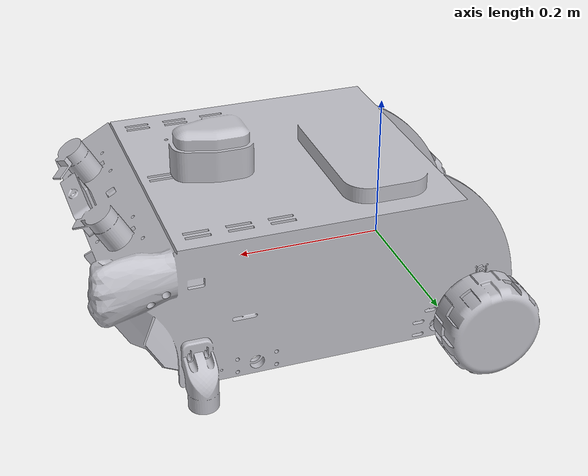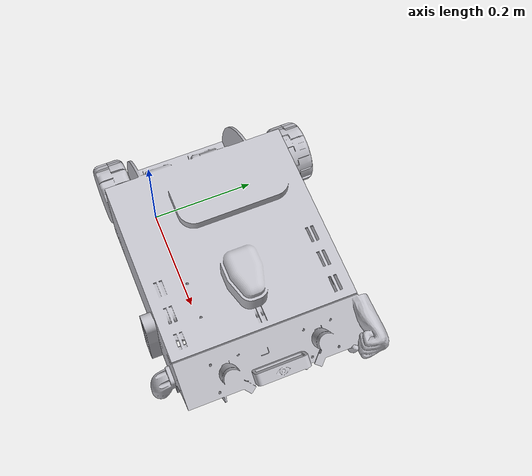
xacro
<?xml version="1.0" ?>
<robot name="Robot" xmlns:xacro="http://www.ros.org/wiki/xacro">

<xacro:include filename="$(find robot_description)/urdf/materials.xacro" />
<xacro:include filename="$(find robot_description)/urdf/Robot.trans" />
<xacro:include filename="$(find robot_description)/urdf/Robot.gazebo" />

<link name="base_link"/>

<joint name="base_mount" type="fixed">
  <origin xyz="0 0 0" rpy="1.5708 0 0"/>
  <parent link="base_link"/>
  <child link="chassis"/>
</joint>

<link name="chassis">
  <!-- Visual/collision only; inertia not needed for visualization. -->
  <visual>
    <origin xyz="0 0 0" rpy="0 0 0"/>
    <geometry>
      <mesh filename="package://robot_description/meshes/base_link.stl" scale="0.001 0.001 0.001"/>
    </geometry>
    <material name="silver"/>
  </visual>
  <collision>
    <origin xyz="0 0 0" rpy="0 0 0"/>
    <geometry>
      <mesh filename="package://robot_description/meshes/base_link.stl" scale="0.001 0.001 0.001"/>
    </geometry>
  </collision>
</link>

<link name="Moteur_+_Roue_v1_Symetrie_miroir__1">
  <inertial>
    <origin xyz="5.182027081260254e-07 3.7287997872448297e-06 -0.021890971794159053" rpy="0 0 0"/>
    <mass value="4.893607945468814"/>
    <inertia ixx="0.005485" iyy="0.005484" izz="0.008133" ixy="0.0" iyz="1e-06" ixz="-0.0"/>
  </inertial>
  <visual>
    <origin xyz="0.018502 -0.032756 0.27162" rpy="0 0 0"/>
    <geometry>
      <mesh filename="package://robot_description/meshes/Moteur_+_Roue_v1_Symetrie_miroir__1.stl" scale="0.001 0.001 0.001"/>
    </geometry>
    <material name="silver"/>
  </visual>
  <collision>
    <origin xyz="0.018502 -0.032756 0.27162" rpy="0 0 0"/>
    <geometry>
      <mesh filename="package://robot_description/meshes/Moteur_+_Roue_v1_Symetrie_miroir__1.stl" scale="0.001 0.001 0.001"/>
    </geometry>
  </collision>
</link>

<link name="Moteur_+_Roue_v3_1">
  <inertial>
    <origin xyz="-9.7522353499635e-07 3.924730006502064e-06 0.02189068703142081" rpy="0 0 0"/>
    <mass value="4.893487253767867"/>
    <inertia ixx="0.005485" iyy="0.005483" izz="0.008133" ixy="0.0" iyz="-1e-06" ixz="0.0"/>
  </inertial>
  <visual>
    <origin xyz="0.019268 -0.035986 -0.021086" rpy="0 0 0"/>
    <geometry>
      <mesh filename="package://robot_description/meshes/Moteur_+_Roue_v3_1.stl" scale="0.001 0.001 0.001"/>
    </geometry>
    <material name="silver"/>
  </visual>
  <collision>
    <origin xyz="0.019268 -0.035986 -0.021086" rpy="0 0 0"/>
    <geometry>
      <mesh filename="package://robot_description/meshes/Moteur_+_Roue_v3_1.stl" scale="0.001 0.001 0.001"/>
    </geometry>
  </collision>
</link>

<joint name="Revolution 3" type="continuous">
  <origin xyz="-0.018502 0.032756 -0.27162" rpy="0 0 0"/>
  <parent link="chassis"/>
  <child link="Moteur_+_Roue_v1_Symetrie_miroir__1"/>
  <axis xyz="-0.0 0.0 1.0"/>
</joint>

<joint name="Revolution 4" type="continuous">
  <origin xyz="-0.019268 0.035986 0.021086" rpy="0 0 0"/>
  <parent link="chassis"/>
  <child link="Moteur_+_Roue_v3_1"/>
  <axis xyz="0.0 -0.0 1.0"/>
</joint>

</robot>

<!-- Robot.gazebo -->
<robot name="Robot" xmlns:xacro="http://www.ros.org/wiki/xacro" >

<xacro:property name="body_color" value="Gazebo/Silver" />

<gazebo>
  <plugin name="control" filename="libgazebo_ros_control.so"/>
</gazebo>
<gazebo reference="base_link">
  <material>${body_color}</material>
  <mu1>0.2</mu1>
  <mu2>0.2</mu2>
  <selfCollide>true</selfCollide>
  <gravity>true</gravity>
</gazebo>

<gazebo reference="left_wheel_link">
  <material>${body_color}</material>
  <mu1>0.2</mu1>
  <mu2>0.2</mu2>
  <selfCollide>true</selfCollide>
</gazebo>

<gazebo reference="right_wheel_link">
  <material>${body_color}</material>
  <mu1>0.2</mu1>
  <mu2>0.2</mu2>
  <selfCollide>true</selfCollide>
</gazebo>

</robot>
